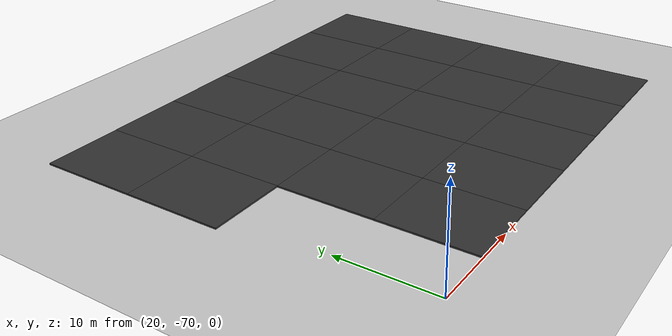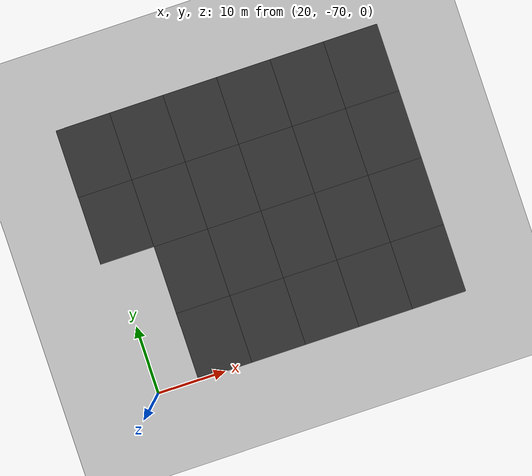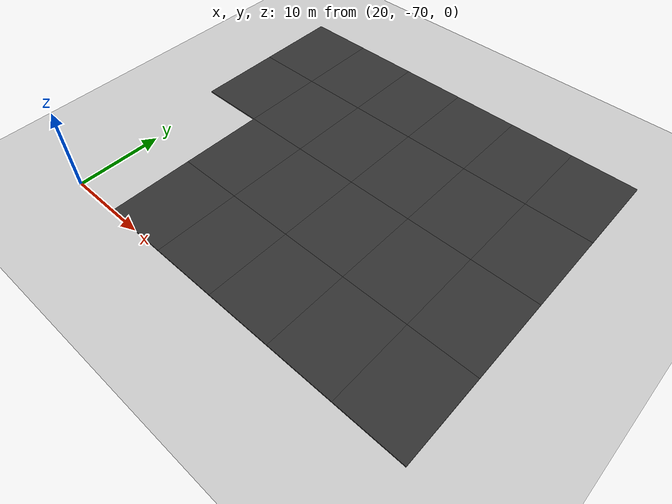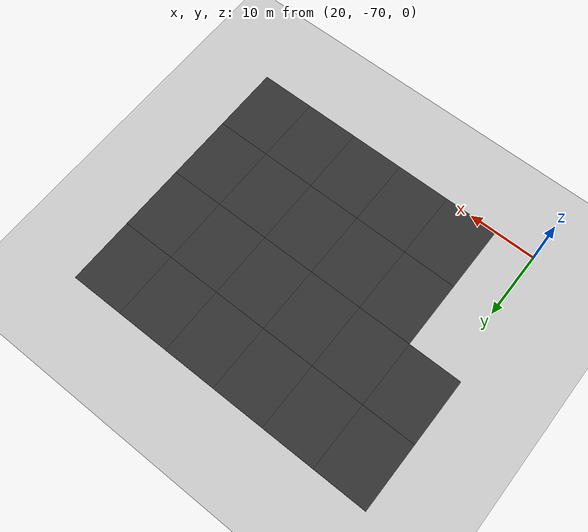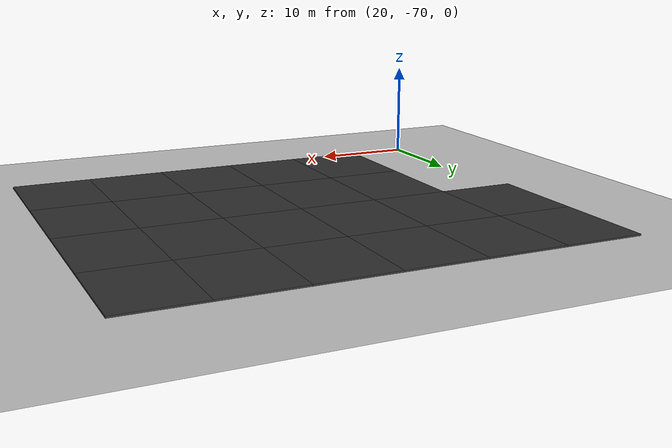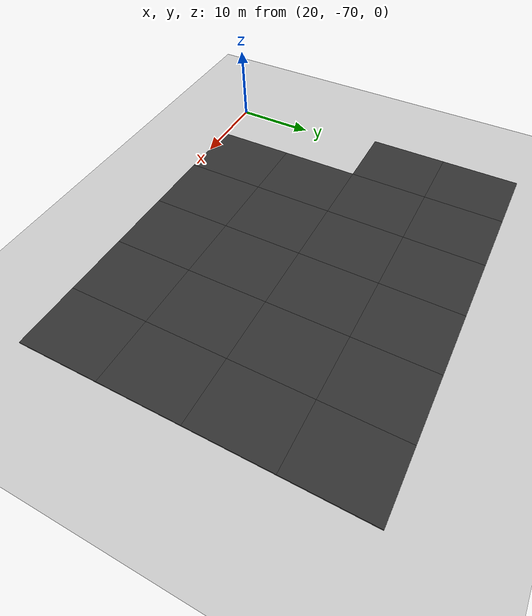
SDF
<sdf version="1.7">
 <world name="default">
  <model name="ground_plane">
   <static>1</static>
   <link name="link">
    <collision name="collision">
     <geometry><plane><normal>0 0 1</normal><size>100 100</size></plane></geometry>
     <surface>
      <contact><collide_bitmask>65535</collide_bitmask></contact>
      <friction><ode><mu>100</mu><mu2>50</mu2></ode></friction>
     </surface>
    </collision>
    <visual name="visual">
     <cast_shadows>0</cast_shadows>
     <geometry><plane><normal>0 0 1</normal><size>100 100</size></plane></geometry>
     <material>
      <script><uri>file://media/materials/scripts/gazebo.material</uri><name>Gazebo/Grey</name></script>
     </material>
    </visual>
   </link>
  </model>
  <model name="mud_box">
   <link name="link">
    <inertial>
     <mass>1</mass>
     <inertia><ixx>1</ixx><ixy>0</ixy><ixz>0</ixz><iyy>1</iyy><iyz>0</iyz><izz>1</izz></inertia>
    </inertial>
    <visual name="visual">
     <cast_shadows>0</cast_shadows>
     <geometry><box><size>8 10 0.2</size></box></geometry>
     <material>
      <script>
       <uri>model://mud_box/materials/scripts</uri>
       <uri>model://mud_box/materials/textures</uri>
       <name>vrc/mud</name>
      </script>
      <shader type="pixel"><normal_map>__default__</normal_map></shader>
      <ambient>0.2 0.2 0.2 1</ambient>
      <diffuse>0.2 0.2 0.2 1</diffuse>
      <specular>0.2 0.2 0.2 1</specular>
      <emissive>0 0 0 1</emissive>
     </material>
    </visual>
    <collision name="collision">
     <geometry><box><size>8 10 0.2</size></box></geometry>
     <surface>
      <friction>
       <ode><mu>1</mu><mu2>1</mu2><fdir1>0 0 0</fdir1><slip1>0</slip1><slip2>0</slip2></ode>
       <torsional>
        <coefficient>1</coefficient>
        <patch_radius>0</patch_radius>
        <surface_radius>0</surface_radius>
        <use_patch_radius>1</use_patch_radius>
        <ode><slip>0</slip></ode>
       </torsional>
      </friction>
      <bounce><restitution_coefficient>0</restitution_coefficient><threshold>1e+06</threshold></bounce>
      <contact>
       <collide_without_contact>0</collide_without_contact>
       <collide_without_contact_bitmask>1</collide_without_contact_bitmask>
       <collide_bitmask>1</collide_bitmask>
       <ode>
        <soft_cfm>0</soft_cfm>
        <soft_erp>0.2</soft_erp>
        <kp>1e+13</kp>
        <kd>1</kd>
        <max_vel>0.01</max_vel>
        <min_depth>0</min_depth>
       </ode>
       <bullet>
        <split_impulse>1</split_impulse>
        <split_impulse_penetration_threshold>-0.01</split_impulse_penetration_threshold>
        <soft_cfm>0</soft_cfm>
        <soft_erp>0.2</soft_erp>
        <kp>1e+13</kp>
        <kd>1</kd>
       </bullet>
      </contact>
     </surface>
    </collision>
   </link>
   <static>1</static>
   <pose>46 -45 0 0 -0 0</pose>
  </model>
  <model name="mud_box_0">
   <link name="link">
    <inertial>
     <mass>1</mass>
     <inertia><ixx>1</ixx><ixy>0</ixy><ixz>0</ixz><iyy>1</iyy><iyz>0</iyz><izz>1</izz></inertia>
    </inertial>
    <visual name="visual">
     <cast_shadows>0</cast_shadows>
     <geometry><box><size>8 10 0.2</size></box></geometry>
     <material>
      <script>
       <uri>model://mud_box/materials/scripts</uri>
       <uri>model://mud_box/materials/textures</uri>
       <name>vrc/mud</name>
      </script>
      <shader type="pixel"><normal_map>__default__</normal_map></shader>
      <ambient>0.2 0.2 0.2 1</ambient>
      <diffuse>0.2 0.2 0.2 1</diffuse>
      <specular>0.2 0.2 0.2 1</specular>
      <emissive>0 0 0 1</emissive>
     </material>
    </visual>
    <collision name="collision">
     <geometry><box><size>8 10 0.2</size></box></geometry>
     <surface>
      <friction>
       <ode><mu>1</mu><mu2>1</mu2><fdir1>0 0 0</fdir1><slip1>0</slip1><slip2>0</slip2></ode>
       <torsional>
        <coefficient>1</coefficient>
        <patch_radius>0</patch_radius>
        <surface_radius>0</surface_radius>
        <use_patch_radius>1</use_patch_radius>
        <ode><slip>0</slip></ode>
       </torsional>
      </friction>
      <bounce><restitution_coefficient>0</restitution_coefficient><threshold>1e+06</threshold></bounce>
      <contact>
       <collide_without_contact>0</collide_without_contact>
       <collide_without_contact_bitmask>1</collide_without_contact_bitmask>
       <collide_bitmask>1</collide_bitmask>
       <ode>
        <soft_cfm>0</soft_cfm>
        <soft_erp>0.2</soft_erp>
        <kp>1e+13</kp>
        <kd>1</kd>
        <max_vel>0.01</max_vel>
        <min_depth>0</min_depth>
       </ode>
       <bullet>
        <split_impulse>1</split_impulse>
        <split_impulse_penetration_threshold>-0.01</split_impulse_penetration_threshold>
        <soft_cfm>0</soft_cfm>
        <soft_erp>0.2</soft_erp>
        <kp>1e+13</kp>
        <kd>1</kd>
       </bullet>
      </contact>
     </surface>
    </collision>
   </link>
   <static>1</static>
   <pose>46 -35 0 0 -0 0</pose>
  </model>
  <model name="mud_box_4">
   <link name="link">
    <inertial>
     <mass>1</mass>
     <inertia><ixx>1</ixx><ixy>0</ixy><ixz>0</ixz><iyy>1</iyy><iyz>0</iyz><izz>1</izz></inertia>
    </inertial>
    <visual name="visual">
     <cast_shadows>0</cast_shadows>
     <geometry><box><size>8 10 0.2</size></box></geometry>
     <material>
      <script>
       <uri>model://mud_box/materials/scripts</uri>
       <uri>model://mud_box/materials/textures</uri>
       <name>vrc/mud</name>
      </script>
      <shader type="pixel"><normal_map>__default__</normal_map></shader>
      <ambient>0.2 0.2 0.2 1</ambient>
      <diffuse>0.2 0.2 0.2 1</diffuse>
      <specular>0.2 0.2 0.2 1</specular>
      <emissive>0 0 0 1</emissive>
     </material>
    </visual>
    <collision name="collision">
     <geometry><box><size>8 10 0.2</size></box></geometry>
     <surface>
      <friction>
       <ode><mu>1</mu><mu2>1</mu2><fdir1>0 0 0</fdir1><slip1>0</slip1><slip2>0</slip2></ode>
       <torsional>
        <coefficient>1</coefficient>
        <patch_radius>0</patch_radius>
        <surface_radius>0</surface_radius>
        <use_patch_radius>1</use_patch_radius>
        <ode><slip>0</slip></ode>
       </torsional>
      </friction>
      <bounce><restitution_coefficient>0</restitution_coefficient><threshold>1e+06</threshold></bounce>
      <contact>
       <collide_without_contact>0</collide_without_contact>
       <collide_without_contact_bitmask>1</collide_without_contact_bitmask>
       <collide_bitmask>1</collide_bitmask>
       <ode>
        <soft_cfm>0</soft_cfm>
        <soft_erp>0.2</soft_erp>
        <kp>1e+13</kp>
        <kd>1</kd>
        <max_vel>0.01</max_vel>
        <min_depth>0</min_depth>
       </ode>
       <bullet>
        <split_impulse>1</split_impulse>
        <split_impulse_penetration_threshold>-0.01</split_impulse_penetration_threshold>
        <soft_cfm>0</soft_cfm>
        <soft_erp>0.2</soft_erp>
        <kp>1e+13</kp>
        <kd>1</kd>
       </bullet>
      </contact>
     </surface>
    </collision>
   </link>
   <static>1</static>
   <pose>38 -45 0 0 -0 0</pose>
  </model>
  <model name="mud_box_5">
   <link name="link">
    <inertial>
     <mass>1</mass>
     <inertia><ixx>1</ixx><ixy>0</ixy><ixz>0</ixz><iyy>1</iyy><iyz>0</iyz><izz>1</izz></inertia>
    </inertial>
    <visual name="visual">
     <cast_shadows>0</cast_shadows>
     <geometry><box><size>8 10 0.2</size></box></geometry>
     <material>
      <script>
       <uri>model://mud_box/materials/scripts</uri>
       <uri>model://mud_box/materials/textures</uri>
       <name>vrc/mud</name>
      </script>
      <shader type="pixel"><normal_map>__default__</normal_map></shader>
      <ambient>0.2 0.2 0.2 1</ambient>
      <diffuse>0.2 0.2 0.2 1</diffuse>
      <specular>0.2 0.2 0.2 1</specular>
      <emissive>0 0 0 1</emissive>
     </material>
    </visual>
    <collision name="collision">
     <geometry><box><size>8 10 0.2</size></box></geometry>
     <surface>
      <friction>
       <ode><mu>1</mu><mu2>1</mu2><fdir1>0 0 0</fdir1><slip1>0</slip1><slip2>0</slip2></ode>
       <torsional>
        <coefficient>1</coefficient>
        <patch_radius>0</patch_radius>
        <surface_radius>0</surface_radius>
        <use_patch_radius>1</use_patch_radius>
        <ode><slip>0</slip></ode>
       </torsional>
      </friction>
      <bounce><restitution_coefficient>0</restitution_coefficient><threshold>1e+06</threshold></bounce>
      <contact>
       <collide_without_contact>0</collide_without_contact>
       <collide_without_contact_bitmask>1</collide_without_contact_bitmask>
       <collide_bitmask>1</collide_bitmask>
       <ode>
        <soft_cfm>0</soft_cfm>
        <soft_erp>0.2</soft_erp>
        <kp>1e+13</kp>
        <kd>1</kd>
        <max_vel>0.01</max_vel>
        <min_depth>0</min_depth>
       </ode>
       <bullet>
        <split_impulse>1</split_impulse>
        <split_impulse_penetration_threshold>-0.01</split_impulse_penetration_threshold>
        <soft_cfm>0</soft_cfm>
        <soft_erp>0.2</soft_erp>
        <kp>1e+13</kp>
        <kd>1</kd>
       </bullet>
      </contact>
     </surface>
    </collision>
   </link>
   <static>1</static>
   <pose>38 -35 0 0 -0 0</pose>
  </model>
  <model name="mud_box_9">
   <link name="link">
    <inertial>
     <mass>1</mass>
     <inertia><ixx>1</ixx><ixy>0</ixy><ixz>0</ixz><iyy>1</iyy><iyz>0</iyz><izz>1</izz></inertia>
    </inertial>
    <visual name="visual">
     <cast_shadows>0</cast_shadows>
     <geometry><box><size>8 10 0.2</size></box></geometry>
     <material>
      <script>
       <uri>model://mud_box/materials/scripts</uri>
       <uri>model://mud_box/materials/textures</uri>
       <name>vrc/mud</name>
      </script>
      <shader type="pixel"><normal_map>__default__</normal_map></shader>
      <ambient>0.2 0.2 0.2 1</ambient>
      <diffuse>0.2 0.2 0.2 1</diffuse>
      <specular>0.2 0.2 0.2 1</specular>
      <emissive>0 0 0 1</emissive>
     </material>
    </visual>
    <collision name="collision">
     <geometry><box><size>8 10 0.2</size></box></geometry>
     <surface>
      <friction>
       <ode><mu>1</mu><mu2>1</mu2><fdir1>0 0 0</fdir1><slip1>0</slip1><slip2>0</slip2></ode>
       <torsional>
        <coefficient>1</coefficient>
        <patch_radius>0</patch_radius>
        <surface_radius>0</surface_radius>
        <use_patch_radius>1</use_patch_radius>
        <ode><slip>0</slip></ode>
       </torsional>
      </friction>
      <bounce><restitution_coefficient>0</restitution_coefficient><threshold>1e+06</threshold></bounce>
      <contact>
       <collide_without_contact>0</collide_without_contact>
       <collide_without_contact_bitmask>1</collide_without_contact_bitmask>
       <collide_bitmask>1</collide_bitmask>
       <ode>
        <soft_cfm>0</soft_cfm>
        <soft_erp>0.2</soft_erp>
        <kp>1e+13</kp>
        <kd>1</kd>
        <max_vel>0.01</max_vel>
        <min_depth>0</min_depth>
       </ode>
       <bullet>
        <split_impulse>1</split_impulse>
        <split_impulse_penetration_threshold>-0.01</split_impulse_penetration_threshold>
        <soft_cfm>0</soft_cfm>
        <soft_erp>0.2</soft_erp>
        <kp>1e+13</kp>
        <kd>1</kd>
       </bullet>
      </contact>
     </surface>
    </collision>
   </link>
   <static>1</static>
   <pose>30 -45 0 0 -0 0</pose>
  </model>
  <model name="mud_box_10">
   <link name="link">
    <inertial>
     <mass>1</mass>
     <inertia><ixx>1</ixx><ixy>0</ixy><ixz>0</ixz><iyy>1</iyy><iyz>0</iyz><izz>1</izz></inertia>
    </inertial>
    <visual name="visual">
     <cast_shadows>0</cast_shadows>
     <geometry><box><size>8 10 0.2</size></box></geometry>
     <material>
      <script>
       <uri>model://mud_box/materials/scripts</uri>
       <uri>model://mud_box/materials/textures</uri>
       <name>vrc/mud</name>
      </script>
      <shader type="pixel"><normal_map>__default__</normal_map></shader>
      <ambient>0.2 0.2 0.2 1</ambient>
      <diffuse>0.2 0.2 0.2 1</diffuse>
      <specular>0.2 0.2 0.2 1</specular>
      <emissive>0 0 0 1</emissive>
     </material>
    </visual>
    <collision name="collision">
     <geometry><box><size>8 10 0.2</size></box></geometry>
     <surface>
      <friction>
       <ode><mu>1</mu><mu2>1</mu2><fdir1>0 0 0</fdir1><slip1>0</slip1><slip2>0</slip2></ode>
       <torsional>
        <coefficient>1</coefficient>
        <patch_radius>0</patch_radius>
        <surface_radius>0</surface_radius>
        <use_patch_radius>1</use_patch_radius>
        <ode><slip>0</slip></ode>
       </torsional>
      </friction>
      <bounce><restitution_coefficient>0</restitution_coefficient><threshold>1e+06</threshold></bounce>
      <contact>
       <collide_without_contact>0</collide_without_contact>
       <collide_without_contact_bitmask>1</collide_without_contact_bitmask>
       <collide_bitmask>1</collide_bitmask>
       <ode>
        <soft_cfm>0</soft_cfm>
        <soft_erp>0.2</soft_erp>
        <kp>1e+13</kp>
        <kd>1</kd>
        <max_vel>0.01</max_vel>
        <min_depth>0</min_depth>
       </ode>
       <bullet>
        <split_impulse>1</split_impulse>
        <split_impulse_penetration_threshold>-0.01</split_impulse_penetration_threshold>
        <soft_cfm>0</soft_cfm>
        <soft_erp>0.2</soft_erp>
        <kp>1e+13</kp>
        <kd>1</kd>
       </bullet>
      </contact>
     </surface>
    </collision>
   </link>
   <static>1</static>
   <pose>30 -35 0 0 -0 0</pose>
  </model>
  <model name="mud_box_17">
   <link name="link">
    <inertial>
     <mass>1</mass>
     <inertia><ixx>1</ixx><ixy>0</ixy><ixz>0</ixz><iyy>1</iyy><iyz>0</iyz><izz>1</izz></inertia>
    </inertial>
    <visual name="visual">
     <cast_shadows>0</cast_shadows>
     <geometry><box><size>8 10 0.2</size></box></geometry>
     <material>
      <script>
       <uri>model://mud_box/materials/scripts</uri>
       <uri>model://mud_box/materials/textures</uri>
       <name>vrc/mud</name>
      </script>
      <shader type="pixel"><normal_map>__default__</normal_map></shader>
      <ambient>0.2 0.2 0.2 1</ambient>
      <diffuse>0.2 0.2 0.2 1</diffuse>
      <specular>0.2 0.2 0.2 1</specular>
      <emissive>0 0 0 1</emissive>
     </material>
    </visual>
    <collision name="collision">
     <geometry><box><size>8 10 0.2</size></box></geometry>
     <surface>
      <friction>
       <ode><mu>1</mu><mu2>1</mu2><fdir1>0 0 0</fdir1><slip1>0</slip1><slip2>0</slip2></ode>
       <torsional>
        <coefficient>1</coefficient>
        <patch_radius>0</patch_radius>
        <surface_radius>0</surface_radius>
        <use_patch_radius>1</use_patch_radius>
        <ode><slip>0</slip></ode>
       </torsional>
      </friction>
      <bounce><restitution_coefficient>0</restitution_coefficient><threshold>1e+06</threshold></bounce>
      <contact>
       <collide_without_contact>0</collide_without_contact>
       <collide_without_contact_bitmask>1</collide_without_contact_bitmask>
       <collide_bitmask>1</collide_bitmask>
       <ode>
        <soft_cfm>0</soft_cfm>
        <soft_erp>0.2</soft_erp>
        <kp>1e+13</kp>
        <kd>1</kd>
        <max_vel>0.01</max_vel>
        <min_depth>0</min_depth>
       </ode>
       <bullet>
        <split_impulse>1</split_impulse>
        <split_impulse_penetration_threshold>-0.01</split_impulse_penetration_threshold>
        <soft_cfm>0</soft_cfm>
        <soft_erp>0.2</soft_erp>
        <kp>1e+13</kp>
        <kd>1</kd>
       </bullet>
      </contact>
     </surface>
    </collision>
   </link>
   <static>1</static>
   <pose>22 -35 0 0 -0 0</pose>
  </model>
  <model name="mud_box_18">
   <link name="link">
    <inertial>
     <mass>1</mass>
     <inertia><ixx>1</ixx><ixy>0</ixy><ixz>0</ixz><iyy>1</iyy><iyz>0</iyz><izz>1</izz></inertia>
    </inertial>
    <visual name="visual">
     <cast_shadows>0</cast_shadows>
     <geometry><box><size>8 10 0.2</size></box></geometry>
     <material>
      <script>
       <uri>model://mud_box/materials/scripts</uri>
       <uri>model://mud_box/materials/textures</uri>
       <name>vrc/mud</name>
      </script>
      <shader type="pixel"><normal_map>__default__</normal_map></shader>
      <ambient>0.2 0.2 0.2 1</ambient>
      <diffuse>0.2 0.2 0.2 1</diffuse>
      <specular>0.2 0.2 0.2 1</specular>
      <emissive>0 0 0 1</emissive>
     </material>
    </visual>
    <collision name="collision">
     <geometry><box><size>8 10 0.2</size></box></geometry>
     <surface>
      <friction>
       <ode><mu>1</mu><mu2>1</mu2><fdir1>0 0 0</fdir1><slip1>0</slip1><slip2>0</slip2></ode>
       <torsional>
        <coefficient>1</coefficient>
        <patch_radius>0</patch_radius>
        <surface_radius>0</surface_radius>
        <use_patch_radius>1</use_patch_radius>
        <ode><slip>0</slip></ode>
       </torsional>
      </friction>
      <bounce><restitution_coefficient>0</restitution_coefficient><threshold>1e+06</threshold></bounce>
      <contact>
       <collide_without_contact>0</collide_without_contact>
       <collide_without_contact_bitmask>1</collide_without_contact_bitmask>
       <collide_bitmask>1</collide_bitmask>
       <ode>
        <soft_cfm>0</soft_cfm>
        <soft_erp>0.2</soft_erp>
        <kp>1e+13</kp>
        <kd>1</kd>
        <max_vel>0.01</max_vel>
        <min_depth>0</min_depth>
       </ode>
       <bullet>
        <split_impulse>1</split_impulse>
        <split_impulse_penetration_threshold>-0.01</split_impulse_penetration_threshold>
        <soft_cfm>0</soft_cfm>
        <soft_erp>0.2</soft_erp>
        <kp>1e+13</kp>
        <kd>1</kd>
       </bullet>
      </contact>
     </surface>
    </collision>
   </link>
   <static>1</static>
   <pose>22 -45 0 0 -0 0</pose>
  </model>
  <model name="mud_box_64">
   <link name="link">
    <inertial>
     <mass>1</mass>
     <inertia><ixx>1</ixx><ixy>0</ixy><ixz>0</ixz><iyy>1</iyy><iyz>0</iyz><izz>1</izz></inertia>
    </inertial>
    <visual name="visual">
     <cast_shadows>0</cast_shadows>
     <geometry><box><size>8 10 0.2</size></box></geometry>
     <material>
      <script>
       <uri>model://mud_box/materials/scripts</uri>
       <uri>model://mud_box/materials/textures</uri>
       <name>vrc/mud</name>
      </script>
      <shader type="pixel"><normal_map>__default__</normal_map></shader>
      <ambient>0.2 0.2 0.2 1</ambient>
      <diffuse>0.2 0.2 0.2 1</diffuse>
      <specular>0.2 0.2 0.2 1</specular>
      <emissive>0 0 0 1</emissive>
     </material>
    </visual>
    <collision name="collision">
     <geometry><box><size>8 10 0.2</size></box></geometry>
     <surface>
      <friction>
       <ode><mu>1</mu><mu2>1</mu2><fdir1>0 0 0</fdir1><slip1>0</slip1><slip2>0</slip2></ode>
       <torsional>
        <coefficient>1</coefficient>
        <patch_radius>0</patch_radius>
        <surface_radius>0</surface_radius>
        <use_patch_radius>1</use_patch_radius>
        <ode><slip>0</slip></ode>
       </torsional>
      </friction>
      <bounce><restitution_coefficient>0</restitution_coefficient><threshold>1e+06</threshold></bounce>
      <contact>
       <collide_without_contact>0</collide_without_contact>
       <collide_without_contact_bitmask>1</collide_without_contact_bitmask>
       <collide_bitmask>1</collide_bitmask>
       <ode>
        <soft_cfm>0</soft_cfm>
        <soft_erp>0.2</soft_erp>
        <kp>1e+13</kp>
        <kd>1</kd>
        <max_vel>0.01</max_vel>
        <min_depth>0</min_depth>
       </ode>
       <bullet>
        <split_impulse>1</split_impulse>
        <split_impulse_penetration_threshold>-0.01</split_impulse_penetration_threshold>
        <soft_cfm>0</soft_cfm>
        <soft_erp>0.2</soft_erp>
        <kp>1e+13</kp>
        <kd>1</kd>
       </bullet>
      </contact>
     </surface>
    </collision>
   </link>
   <static>1</static>
   <pose>46 -55 0 0 -0 0</pose>
  </model>
  <model name="mud_box_65">
   <link name="link">
    <inertial>
     <mass>1</mass>
     <inertia><ixx>1</ixx><ixy>0</ixy><ixz>0</ixz><iyy>1</iyy><iyz>0</iyz><izz>1</izz></inertia>
    </inertial>
    <visual name="visual">
     <cast_shadows>0</cast_shadows>
     <geometry><box><size>8 10 0.2</size></box></geometry>
     <material>
      <script>
       <uri>model://mud_box/materials/scripts</uri>
       <uri>model://mud_box/materials/textures</uri>
       <name>vrc/mud</name>
      </script>
      <shader type="pixel"><normal_map>__default__</normal_map></shader>
      <ambient>0.2 0.2 0.2 1</ambient>
      <diffuse>0.2 0.2 0.2 1</diffuse>
      <specular>0.2 0.2 0.2 1</specular>
      <emissive>0 0 0 1</emissive>
     </material>
    </visual>
    <collision name="collision">
     <geometry><box><size>8 10 0.2</size></box></geometry>
     <surface>
      <friction>
       <ode><mu>1</mu><mu2>1</mu2><fdir1>0 0 0</fdir1><slip1>0</slip1><slip2>0</slip2></ode>
       <torsional>
        <coefficient>1</coefficient>
        <patch_radius>0</patch_radius>
        <surface_radius>0</surface_radius>
        <use_patch_radius>1</use_patch_radius>
        <ode><slip>0</slip></ode>
       </torsional>
      </friction>
      <bounce><restitution_coefficient>0</restitution_coefficient><threshold>1e+06</threshold></bounce>
      <contact>
       <collide_without_contact>0</collide_without_contact>
       <collide_without_contact_bitmask>1</collide_without_contact_bitmask>
       <collide_bitmask>1</collide_bitmask>
       <ode>
        <soft_cfm>0</soft_cfm>
        <soft_erp>0.2</soft_erp>
        <kp>1e+13</kp>
        <kd>1</kd>
        <max_vel>0.01</max_vel>
        <min_depth>0</min_depth>
       </ode>
       <bullet>
        <split_impulse>1</split_impulse>
        <split_impulse_penetration_threshold>-0.01</split_impulse_penetration_threshold>
        <soft_cfm>0</soft_cfm>
        <soft_erp>0.2</soft_erp>
        <kp>1e+13</kp>
        <kd>1</kd>
       </bullet>
      </contact>
     </surface>
    </collision>
   </link>
   <static>1</static>
   <pose>38 -55 0 0 -0 0</pose>
  </model>
  <model name="mud_box_66">
   <link name="link">
    <inertial>
     <mass>1</mass>
     <inertia><ixx>1</ixx><ixy>0</ixy><ixz>0</ixz><iyy>1</iyy><iyz>0</iyz><izz>1</izz></inertia>
    </inertial>
    <visual name="visual">
     <cast_shadows>0</cast_shadows>
     <geometry><box><size>8 10 0.2</size></box></geometry>
     <material>
      <script>
       <uri>model://mud_box/materials/scripts</uri>
       <uri>model://mud_box/materials/textures</uri>
       <name>vrc/mud</name>
      </script>
      <shader type="pixel"><normal_map>__default__</normal_map></shader>
      <ambient>0.2 0.2 0.2 1</ambient>
      <diffuse>0.2 0.2 0.2 1</diffuse>
      <specular>0.2 0.2 0.2 1</specular>
      <emissive>0 0 0 1</emissive>
     </material>
    </visual>
    <collision name="collision">
     <geometry><box><size>8 10 0.2</size></box></geometry>
     <surface>
      <friction>
       <ode><mu>1</mu><mu2>1</mu2><fdir1>0 0 0</fdir1><slip1>0</slip1><slip2>0</slip2></ode>
       <torsional>
        <coefficient>1</coefficient>
        <patch_radius>0</patch_radius>
        <surface_radius>0</surface_radius>
        <use_patch_radius>1</use_patch_radius>
        <ode><slip>0</slip></ode>
       </torsional>
      </friction>
      <bounce><restitution_coefficient>0</restitution_coefficient><threshold>1e+06</threshold></bounce>
      <contact>
       <collide_without_contact>0</collide_without_contact>
       <collide_without_contact_bitmask>1</collide_without_contact_bitmask>
       <collide_bitmask>1</collide_bitmask>
       <ode>
        <soft_cfm>0</soft_cfm>
        <soft_erp>0.2</soft_erp>
        <kp>1e+13</kp>
        <kd>1</kd>
        <max_vel>0.01</max_vel>
        <min_depth>0</min_depth>
       </ode>
       <bullet>
        <split_impulse>1</split_impulse>
        <split_impulse_penetration_threshold>-0.01</split_impulse_penetration_threshold>
        <soft_cfm>0</soft_cfm>
        <soft_erp>0.2</soft_erp>
        <kp>1e+13</kp>
        <kd>1</kd>
       </bullet>
      </contact>
     </surface>
    </collision>
   </link>
   <static>1</static>
   <pose>30 -55 0 0 -0 0</pose>
  </model>
  <model name="mud_box_101">
   <link name="link">
    <inertial>
     <mass>1</mass>
     <inertia><ixx>1</ixx><ixy>0</ixy><ixz>0</ixz><iyy>1</iyy><iyz>0</iyz><izz>1</izz></inertia>
    </inertial>
    <visual name="visual">
     <cast_shadows>0</cast_shadows>
     <geometry><box><size>8 10 0.2</size></box></geometry>
     <material>
      <script>
       <uri>model://mud_box/materials/scripts</uri>
       <uri>model://mud_box/materials/textures</uri>
       <name>vrc/mud</name>
      </script>
      <shader type="pixel"><normal_map>__default__</normal_map></shader>
      <ambient>0.2 0.2 0.2 1</ambient>
      <diffuse>0.2 0.2 0.2 1</diffuse>
      <specular>0.2 0.2 0.2 1</specular>
      <emissive>0 0 0 1</emissive>
     </material>
    </visual>
    <collision name="collision">
     <geometry><box><size>8 10 0.2</size></box></geometry>
     <surface>
      <friction>
       <ode><mu>1</mu><mu2>1</mu2><fdir1>0 0 0</fdir1><slip1>0</slip1><slip2>0</slip2></ode>
       <torsional>
        <coefficient>1</coefficient>
        <patch_radius>0</patch_radius>
        <surface_radius>0</surface_radius>
        <use_patch_radius>1</use_patch_radius>
        <ode><slip>0</slip></ode>
       </torsional>
      </friction>
      <bounce><restitution_coefficient>0</restitution_coefficient><threshold>1e+06</threshold></bounce>
      <contact>
       <collide_without_contact>0</collide_without_contact>
       <collide_without_contact_bitmask>1</collide_without_contact_bitmask>
       <collide_bitmask>1</collide_bitmask>
       <ode>
        <soft_cfm>0</soft_cfm>
        <soft_erp>0.2</soft_erp>
        <kp>1e+13</kp>
        <kd>1</kd>
        <max_vel>0.01</max_vel>
        <min_depth>0</min_depth>
       </ode>
       <bullet>
        <split_impulse>1</split_impulse>
        <split_impulse_penetration_threshold>-0.01</split_impulse_penetration_threshold>
        <soft_cfm>0</soft_cfm>
        <soft_erp>0.2</soft_erp>
        <kp>1e+13</kp>
        <kd>1</kd>
       </bullet>
      </contact>
     </surface>
    </collision>
   </link>
   <static>1</static>
   <pose>54 -35 0 0 -0 0</pose>
  </model>
  <model name="mud_box_102">
   <link name="link">
    <inertial>
     <mass>1</mass>
     <inertia><ixx>1</ixx><ixy>0</ixy><ixz>0</ixz><iyy>1</iyy><iyz>0</iyz><izz>1</izz></inertia>
    </inertial>
    <visual name="visual">
     <cast_shadows>0</cast_shadows>
     <geometry><box><size>8 10 0.2</size></box></geometry>
     <material>
      <script>
       <uri>model://mud_box/materials/scripts</uri>
       <uri>model://mud_box/materials/textures</uri>
       <name>vrc/mud</name>
      </script>
      <shader type="pixel"><normal_map>__default__</normal_map></shader>
      <ambient>0.2 0.2 0.2 1</ambient>
      <diffuse>0.2 0.2 0.2 1</diffuse>
      <specular>0.2 0.2 0.2 1</specular>
      <emissive>0 0 0 1</emissive>
     </material>
    </visual>
    <collision name="collision">
     <geometry><box><size>8 10 0.2</size></box></geometry>
     <surface>
      <friction>
       <ode><mu>1</mu><mu2>1</mu2><fdir1>0 0 0</fdir1><slip1>0</slip1><slip2>0</slip2></ode>
       <torsional>
        <coefficient>1</coefficient>
        <patch_radius>0</patch_radius>
        <surface_radius>0</surface_radius>
        <use_patch_radius>1</use_patch_radius>
        <ode><slip>0</slip></ode>
       </torsional>
      </friction>
      <bounce><restitution_coefficient>0</restitution_coefficient><threshold>1e+06</threshold></bounce>
      <contact>
       <collide_without_contact>0</collide_without_contact>
       <collide_without_contact_bitmask>1</collide_without_contact_bitmask>
       <collide_bitmask>1</collide_bitmask>
       <ode>
        <soft_cfm>0</soft_cfm>
        <soft_erp>0.2</soft_erp>
        <kp>1e+13</kp>
        <kd>1</kd>
        <max_vel>0.01</max_vel>
        <min_depth>0</min_depth>
       </ode>
       <bullet>
        <split_impulse>1</split_impulse>
        <split_impulse_penetration_threshold>-0.01</split_impulse_penetration_threshold>
        <soft_cfm>0</soft_cfm>
        <soft_erp>0.2</soft_erp>
        <kp>1e+13</kp>
        <kd>1</kd>
       </bullet>
      </contact>
     </surface>
    </collision>
   </link>
   <static>1</static>
   <pose>54 -45 0 0 -0 0</pose>
  </model>
  <model name="mud_box_103">
   <link name="link">
    <inertial>
     <mass>1</mass>
     <inertia><ixx>1</ixx><ixy>0</ixy><ixz>0</ixz><iyy>1</iyy><iyz>0</iyz><izz>1</izz></inertia>
    </inertial>
    <visual name="visual">
     <cast_shadows>0</cast_shadows>
     <geometry><box><size>8 10 0.2</size></box></geometry>
     <material>
      <script>
       <uri>model://mud_box/materials/scripts</uri>
       <uri>model://mud_box/materials/textures</uri>
       <name>vrc/mud</name>
      </script>
      <shader type="pixel"><normal_map>__default__</normal_map></shader>
      <ambient>0.2 0.2 0.2 1</ambient>
      <diffuse>0.2 0.2 0.2 1</diffuse>
      <specular>0.2 0.2 0.2 1</specular>
      <emissive>0 0 0 1</emissive>
     </material>
    </visual>
    <collision name="collision">
     <geometry><box><size>8 10 0.2</size></box></geometry>
     <surface>
      <friction>
       <ode><mu>1</mu><mu2>1</mu2><fdir1>0 0 0</fdir1><slip1>0</slip1><slip2>0</slip2></ode>
       <torsional>
        <coefficient>1</coefficient>
        <patch_radius>0</patch_radius>
        <surface_radius>0</surface_radius>
        <use_patch_radius>1</use_patch_radius>
        <ode><slip>0</slip></ode>
       </torsional>
      </friction>
      <bounce><restitution_coefficient>0</restitution_coefficient><threshold>1e+06</threshold></bounce>
      <contact>
       <collide_without_contact>0</collide_without_contact>
       <collide_without_contact_bitmask>1</collide_without_contact_bitmask>
       <collide_bitmask>1</collide_bitmask>
       <ode>
        <soft_cfm>0</soft_cfm>
        <soft_erp>0.2</soft_erp>
        <kp>1e+13</kp>
        <kd>1</kd>
        <max_vel>0.01</max_vel>
        <min_depth>0</min_depth>
       </ode>
       <bullet>
        <split_impulse>1</split_impulse>
        <split_impulse_penetration_threshold>-0.01</split_impulse_penetration_threshold>
        <soft_cfm>0</soft_cfm>
        <soft_erp>0.2</soft_erp>
        <kp>1e+13</kp>
        <kd>1</kd>
       </bullet>
      </contact>
     </surface>
    </collision>
   </link>
   <static>1</static>
   <pose>54 -55 0 0 -0 0</pose>
  </model>
  <model name="mud_box_104">
   <link name="link">
    <inertial>
     <mass>1</mass>
     <inertia><ixx>1</ixx><ixy>0</ixy><ixz>0</ixz><iyy>1</iyy><iyz>0</iyz><izz>1</izz></inertia>
    </inertial>
    <visual name="visual">
     <cast_shadows>0</cast_shadows>
     <geometry><box><size>8 10 0.2</size></box></geometry>
     <material>
      <script>
       <uri>model://mud_box/materials/scripts</uri>
       <uri>model://mud_box/materials/textures</uri>
       <name>vrc/mud</name>
      </script>
      <shader type="pixel"><normal_map>__default__</normal_map></shader>
      <ambient>0.2 0.2 0.2 1</ambient>
      <diffuse>0.2 0.2 0.2 1</diffuse>
      <specular>0.2 0.2 0.2 1</specular>
      <emissive>0 0 0 1</emissive>
     </material>
    </visual>
    <collision name="collision">
     <geometry><box><size>8 10 0.2</size></box></geometry>
     <surface>
      <friction>
       <ode><mu>1</mu><mu2>1</mu2><fdir1>0 0 0</fdir1><slip1>0</slip1><slip2>0</slip2></ode>
       <torsional>
        <coefficient>1</coefficient>
        <patch_radius>0</patch_radius>
        <surface_radius>0</surface_radius>
        <use_patch_radius>1</use_patch_radius>
        <ode><slip>0</slip></ode>
       </torsional>
      </friction>
      <bounce><restitution_coefficient>0</restitution_coefficient><threshold>1e+06</threshold></bounce>
      <contact>
       <collide_without_contact>0</collide_without_contact>
       <collide_without_contact_bitmask>1</collide_without_contact_bitmask>
       <collide_bitmask>1</collide_bitmask>
       <ode>
        <soft_cfm>0</soft_cfm>
        <soft_erp>0.2</soft_erp>
        <kp>1e+13</kp>
        <kd>1</kd>
        <max_vel>0.01</max_vel>
        <min_depth>0</min_depth>
       </ode>
       <bullet>
        <split_impulse>1</split_impulse>
        <split_impulse_penetration_threshold>-0.01</split_impulse_penetration_threshold>
        <soft_cfm>0</soft_cfm>
        <soft_erp>0.2</soft_erp>
        <kp>1e+13</kp>
        <kd>1</kd>
       </bullet>
      </contact>
     </surface>
    </collision>
   </link>
   <static>1</static>
   <pose>62 -55 0 0 -0 0</pose>
  </model>
  <model name="mud_box_105">
   <link name="link">
    <inertial>
     <mass>1</mass>
     <inertia><ixx>1</ixx><ixy>0</ixy><ixz>0</ixz><iyy>1</iyy><iyz>0</iyz><izz>1</izz></inertia>
    </inertial>
    <visual name="visual">
     <cast_shadows>0</cast_shadows>
     <geometry><box><size>8 10 0.2</size></box></geometry>
     <material>
      <script>
       <uri>model://mud_box/materials/scripts</uri>
       <uri>model://mud_box/materials/textures</uri>
       <name>vrc/mud</name>
      </script>
      <shader type="pixel"><normal_map>__default__</normal_map></shader>
      <ambient>0.2 0.2 0.2 1</ambient>
      <diffuse>0.2 0.2 0.2 1</diffuse>
      <specular>0.2 0.2 0.2 1</specular>
      <emissive>0 0 0 1</emissive>
     </material>
    </visual>
    <collision name="collision">
     <geometry><box><size>8 10 0.2</size></box></geometry>
     <surface>
      <friction>
       <ode><mu>1</mu><mu2>1</mu2><fdir1>0 0 0</fdir1><slip1>0</slip1><slip2>0</slip2></ode>
       <torsional>
        <coefficient>1</coefficient>
        <patch_radius>0</patch_radius>
        <surface_radius>0</surface_radius>
        <use_patch_radius>1</use_patch_radius>
        <ode><slip>0</slip></ode>
       </torsional>
      </friction>
      <bounce><restitution_coefficient>0</restitution_coefficient><threshold>1e+06</threshold></bounce>
      <contact>
       <collide_without_contact>0</collide_without_contact>
       <collide_without_contact_bitmask>1</collide_without_contact_bitmask>
       <collide_bitmask>1</collide_bitmask>
       <ode>
        <soft_cfm>0</soft_cfm>
        <soft_erp>0.2</soft_erp>
        <kp>1e+13</kp>
        <kd>1</kd>
        <max_vel>0.01</max_vel>
        <min_depth>0</min_depth>
       </ode>
       <bullet>
        <split_impulse>1</split_impulse>
        <split_impulse_penetration_threshold>-0.01</split_impulse_penetration_threshold>
        <soft_cfm>0</soft_cfm>
        <soft_erp>0.2</soft_erp>
        <kp>1e+13</kp>
        <kd>1</kd>
       </bullet>
      </contact>
     </surface>
    </collision>
   </link>
   <static>1</static>
   <pose>62 -45 0 0 -0 0</pose>
  </model>
  <model name="mud_box_106">
   <link name="link">
    <inertial>
     <mass>1</mass>
     <inertia><ixx>1</ixx><ixy>0</ixy><ixz>0</ixz><iyy>1</iyy><iyz>0</iyz><izz>1</izz></inertia>
    </inertial>
    <visual name="visual">
     <cast_shadows>0</cast_shadows>
     <geometry><box><size>8 10 0.2</size></box></geometry>
     <material>
      <script>
       <uri>model://mud_box/materials/scripts</uri>
       <uri>model://mud_box/materials/textures</uri>
       <name>vrc/mud</name>
      </script>
      <shader type="pixel"><normal_map>__default__</normal_map></shader>
      <ambient>0.2 0.2 0.2 1</ambient>
      <diffuse>0.2 0.2 0.2 1</diffuse>
      <specular>0.2 0.2 0.2 1</specular>
      <emissive>0 0 0 1</emissive>
     </material>
    </visual>
    <collision name="collision">
     <geometry><box><size>8 10 0.2</size></box></geometry>
     <surface>
      <friction>
       <ode><mu>1</mu><mu2>1</mu2><fdir1>0 0 0</fdir1><slip1>0</slip1><slip2>0</slip2></ode>
       <torsional>
        <coefficient>1</coefficient>
        <patch_radius>0</patch_radius>
        <surface_radius>0</surface_radius>
        <use_patch_radius>1</use_patch_radius>
        <ode><slip>0</slip></ode>
       </torsional>
      </friction>
      <bounce><restitution_coefficient>0</restitution_coefficient><threshold>1e+06</threshold></bounce>
      <contact>
       <collide_without_contact>0</collide_without_contact>
       <collide_without_contact_bitmask>1</collide_without_contact_bitmask>
       <collide_bitmask>1</collide_bitmask>
       <ode>
        <soft_cfm>0</soft_cfm>
        <soft_erp>0.2</soft_erp>
        <kp>1e+13</kp>
        <kd>1</kd>
        <max_vel>0.01</max_vel>
        <min_depth>0</min_depth>
       </ode>
       <bullet>
        <split_impulse>1</split_impulse>
        <split_impulse_penetration_threshold>-0.01</split_impulse_penetration_threshold>
        <soft_cfm>0</soft_cfm>
        <soft_erp>0.2</soft_erp>
        <kp>1e+13</kp>
        <kd>1</kd>
       </bullet>
      </contact>
     </surface>
    </collision>
   </link>
   <static>1</static>
   <pose>62 -35 0 0 -0 0</pose>
  </model>
  <model name="mud_box_111">
   <link name="link">
    <inertial>
     <mass>1</mass>
     <inertia><ixx>1</ixx><ixy>0</ixy><ixz>0</ixz><iyy>1</iyy><iyz>0</iyz><izz>1</izz></inertia>
    </inertial>
    <visual name="visual">
     <cast_shadows>0</cast_shadows>
     <geometry><box><size>8 10 0.2</size></box></geometry>
     <material>
      <script>
       <uri>model://mud_box/materials/scripts</uri>
       <uri>model://mud_box/materials/textures</uri>
       <name>vrc/mud</name>
      </script>
      <shader type="pixel"><normal_map>__default__</normal_map></shader>
      <ambient>0.2 0.2 0.2 1</ambient>
      <diffuse>0.2 0.2 0.2 1</diffuse>
      <specular>0.2 0.2 0.2 1</specular>
      <emissive>0 0 0 1</emissive>
     </material>
    </visual>
    <collision name="collision">
     <geometry><box><size>8 10 0.2</size></box></geometry>
     <surface>
      <friction>
       <ode><mu>1</mu><mu2>1</mu2><fdir1>0 0 0</fdir1><slip1>0</slip1><slip2>0</slip2></ode>
       <torsional>
        <coefficient>1</coefficient>
        <patch_radius>0</patch_radius>
        <surface_radius>0</surface_radius>
        <use_patch_radius>1</use_patch_radius>
        <ode><slip>0</slip></ode>
       </torsional>
      </friction>
      <bounce><restitution_coefficient>0</restitution_coefficient><threshold>1e+06</threshold></bounce>
      <contact>
       <collide_without_contact>0</collide_without_contact>
       <collide_without_contact_bitmask>1</collide_without_contact_bitmask>
       <collide_bitmask>1</collide_bitmask>
       <ode>
        <soft_cfm>0</soft_cfm>
        <soft_erp>0.2</soft_erp>
        <kp>1e+13</kp>
        <kd>1</kd>
        <max_vel>0.01</max_vel>
        <min_depth>0</min_depth>
       </ode>
       <bullet>
        <split_impulse>1</split_impulse>
        <split_impulse_penetration_threshold>-0.01</split_impulse_penetration_threshold>
        <soft_cfm>0</soft_cfm>
        <soft_erp>0.2</soft_erp>
        <kp>1e+13</kp>
        <kd>1</kd>
       </bullet>
      </contact>
     </surface>
    </collision>
   </link>
   <static>1</static>
   <pose>62 -65 0 0 -0 0</pose>
  </model>
  <model name="mud_box_112">
   <link name="link">
    <inertial>
     <mass>1</mass>
     <inertia><ixx>1</ixx><ixy>0</ixy><ixz>0</ixz><iyy>1</iyy><iyz>0</iyz><izz>1</izz></inertia>
    </inertial>
    <visual name="visual">
     <cast_shadows>0</cast_shadows>
     <geometry><box><size>8 10 0.2</size></box></geometry>
     <material>
      <script>
       <uri>model://mud_box/materials/scripts</uri>
       <uri>model://mud_box/materials/textures</uri>
       <name>vrc/mud</name>
      </script>
      <shader type="pixel"><normal_map>__default__</normal_map></shader>
      <ambient>0.2 0.2 0.2 1</ambient>
      <diffuse>0.2 0.2 0.2 1</diffuse>
      <specular>0.2 0.2 0.2 1</specular>
      <emissive>0 0 0 1</emissive>
     </material>
    </visual>
    <collision name="collision">
     <geometry><box><size>8 10 0.2</size></box></geometry>
     <surface>
      <friction>
       <ode><mu>1</mu><mu2>1</mu2><fdir1>0 0 0</fdir1><slip1>0</slip1><slip2>0</slip2></ode>
       <torsional>
        <coefficient>1</coefficient>
        <patch_radius>0</patch_radius>
        <surface_radius>0</surface_radius>
        <use_patch_radius>1</use_patch_radius>
        <ode><slip>0</slip></ode>
       </torsional>
      </friction>
      <bounce><restitution_coefficient>0</restitution_coefficient><threshold>1e+06</threshold></bounce>
      <contact>
       <collide_without_contact>0</collide_without_contact>
       <collide_without_contact_bitmask>1</collide_without_contact_bitmask>
       <collide_bitmask>1</collide_bitmask>
       <ode>
        <soft_cfm>0</soft_cfm>
        <soft_erp>0.2</soft_erp>
        <kp>1e+13</kp>
        <kd>1</kd>
        <max_vel>0.01</max_vel>
        <min_depth>0</min_depth>
       </ode>
       <bullet>
        <split_impulse>1</split_impulse>
        <split_impulse_penetration_threshold>-0.01</split_impulse_penetration_threshold>
        <soft_cfm>0</soft_cfm>
        <soft_erp>0.2</soft_erp>
        <kp>1e+13</kp>
        <kd>1</kd>
       </bullet>
      </contact>
     </surface>
    </collision>
   </link>
   <static>1</static>
   <pose>54 -65 0 0 -0 0</pose>
  </model>
  <model name="mud_box_113">
   <link name="link">
    <inertial>
     <mass>1</mass>
     <inertia><ixx>1</ixx><ixy>0</ixy><ixz>0</ixz><iyy>1</iyy><iyz>0</iyz><izz>1</izz></inertia>
    </inertial>
    <visual name="visual">
     <cast_shadows>0</cast_shadows>
     <geometry><box><size>8 10 0.2</size></box></geometry>
     <material>
      <script>
       <uri>model://mud_box/materials/scripts</uri>
       <uri>model://mud_box/materials/textures</uri>
       <name>vrc/mud</name>
      </script>
      <shader type="pixel"><normal_map>__default__</normal_map></shader>
      <ambient>0.2 0.2 0.2 1</ambient>
      <diffuse>0.2 0.2 0.2 1</diffuse>
      <specular>0.2 0.2 0.2 1</specular>
      <emissive>0 0 0 1</emissive>
     </material>
    </visual>
    <collision name="collision">
     <geometry><box><size>8 10 0.2</size></box></geometry>
     <surface>
      <friction>
       <ode><mu>1</mu><mu2>1</mu2><fdir1>0 0 0</fdir1><slip1>0</slip1><slip2>0</slip2></ode>
       <torsional>
        <coefficient>1</coefficient>
        <patch_radius>0</patch_radius>
        <surface_radius>0</surface_radius>
        <use_patch_radius>1</use_patch_radius>
        <ode><slip>0</slip></ode>
       </torsional>
      </friction>
      <bounce><restitution_coefficient>0</restitution_coefficient><threshold>1e+06</threshold></bounce>
      <contact>
       <collide_without_contact>0</collide_without_contact>
       <collide_without_contact_bitmask>1</collide_without_contact_bitmask>
       <collide_bitmask>1</collide_bitmask>
       <ode>
        <soft_cfm>0</soft_cfm>
        <soft_erp>0.2</soft_erp>
        <kp>1e+13</kp>
        <kd>1</kd>
        <max_vel>0.01</max_vel>
        <min_depth>0</min_depth>
       </ode>
       <bullet>
        <split_impulse>1</split_impulse>
        <split_impulse_penetration_threshold>-0.01</split_impulse_penetration_threshold>
        <soft_cfm>0</soft_cfm>
        <soft_erp>0.2</soft_erp>
        <kp>1e+13</kp>
        <kd>1</kd>
       </bullet>
      </contact>
     </surface>
    </collision>
   </link>
   <static>1</static>
   <pose>46 -65 0 0 -0 0</pose>
  </model>
  <model name="mud_box_114">
   <link name="link">
    <inertial>
     <mass>1</mass>
     <inertia><ixx>1</ixx><ixy>0</ixy><ixz>0</ixz><iyy>1</iyy><iyz>0</iyz><izz>1</izz></inertia>
    </inertial>
    <visual name="visual">
     <cast_shadows>0</cast_shadows>
     <geometry><box><size>8 10 0.2</size></box></geometry>
     <material>
      <script>
       <uri>model://mud_box/materials/scripts</uri>
       <uri>model://mud_box/materials/textures</uri>
       <name>vrc/mud</name>
      </script>
      <shader type="pixel"><normal_map>__default__</normal_map></shader>
      <ambient>0.2 0.2 0.2 1</ambient>
      <diffuse>0.2 0.2 0.2 1</diffuse>
      <specular>0.2 0.2 0.2 1</specular>
      <emissive>0 0 0 1</emissive>
     </material>
    </visual>
    <collision name="collision">
     <geometry><box><size>8 10 0.2</size></box></geometry>
     <surface>
      <friction>
       <ode><mu>1</mu><mu2>1</mu2><fdir1>0 0 0</fdir1><slip1>0</slip1><slip2>0</slip2></ode>
       <torsional>
        <coefficient>1</coefficient>
        <patch_radius>0</patch_radius>
        <surface_radius>0</surface_radius>
        <use_patch_radius>1</use_patch_radius>
        <ode><slip>0</slip></ode>
       </torsional>
      </friction>
      <bounce><restitution_coefficient>0</restitution_coefficient><threshold>1e+06</threshold></bounce>
      <contact>
       <collide_without_contact>0</collide_without_contact>
       <collide_without_contact_bitmask>1</collide_without_contact_bitmask>
       <collide_bitmask>1</collide_bitmask>
       <ode>
        <soft_cfm>0</soft_cfm>
        <soft_erp>0.2</soft_erp>
        <kp>1e+13</kp>
        <kd>1</kd>
        <max_vel>0.01</max_vel>
        <min_depth>0</min_depth>
       </ode>
       <bullet>
        <split_impulse>1</split_impulse>
        <split_impulse_penetration_threshold>-0.01</split_impulse_penetration_threshold>
        <soft_cfm>0</soft_cfm>
        <soft_erp>0.2</soft_erp>
        <kp>1e+13</kp>
        <kd>1</kd>
       </bullet>
      </contact>
     </surface>
    </collision>
   </link>
   <static>1</static>
   <pose>38 -65 0 0 -0 0</pose>
  </model>
  <model name="mud_box_115">
   <link name="link">
    <inertial>
     <mass>1</mass>
     <inertia><ixx>1</ixx><ixy>0</ixy><ixz>0</ixz><iyy>1</iyy><iyz>0</iyz><izz>1</izz></inertia>
    </inertial>
    <visual name="visual">
     <cast_shadows>0</cast_shadows>
     <geometry><box><size>8 10 0.2</size></box></geometry>
     <material>
      <script>
       <uri>model://mud_box/materials/scripts</uri>
       <uri>model://mud_box/materials/textures</uri>
       <name>vrc/mud</name>
      </script>
      <shader type="pixel"><normal_map>__default__</normal_map></shader>
      <ambient>0.2 0.2 0.2 1</ambient>
      <diffuse>0.2 0.2 0.2 1</diffuse>
      <specular>0.2 0.2 0.2 1</specular>
      <emissive>0 0 0 1</emissive>
     </material>
    </visual>
    <collision name="collision">
     <geometry><box><size>8 10 0.2</size></box></geometry>
     <surface>
      <friction>
       <ode><mu>1</mu><mu2>1</mu2><fdir1>0 0 0</fdir1><slip1>0</slip1><slip2>0</slip2></ode>
       <torsional>
        <coefficient>1</coefficient>
        <patch_radius>0</patch_radius>
        <surface_radius>0</surface_radius>
        <use_patch_radius>1</use_patch_radius>
        <ode><slip>0</slip></ode>
       </torsional>
      </friction>
      <bounce><restitution_coefficient>0</restitution_coefficient><threshold>1e+06</threshold></bounce>
      <contact>
       <collide_without_contact>0</collide_without_contact>
       <collide_without_contact_bitmask>1</collide_without_contact_bitmask>
       <collide_bitmask>1</collide_bitmask>
       <ode>
        <soft_cfm>0</soft_cfm>
        <soft_erp>0.2</soft_erp>
        <kp>1e+13</kp>
        <kd>1</kd>
        <max_vel>0.01</max_vel>
        <min_depth>0</min_depth>
       </ode>
       <bullet>
        <split_impulse>1</split_impulse>
        <split_impulse_penetration_threshold>-0.01</split_impulse_penetration_threshold>
        <soft_cfm>0</soft_cfm>
        <soft_erp>0.2</soft_erp>
        <kp>1e+13</kp>
        <kd>1</kd>
       </bullet>
      </contact>
     </surface>
    </collision>
   </link>
   <static>1</static>
   <pose>30 -65 0 0 -0 0</pose>
  </model>
 </world>
</sdf>
